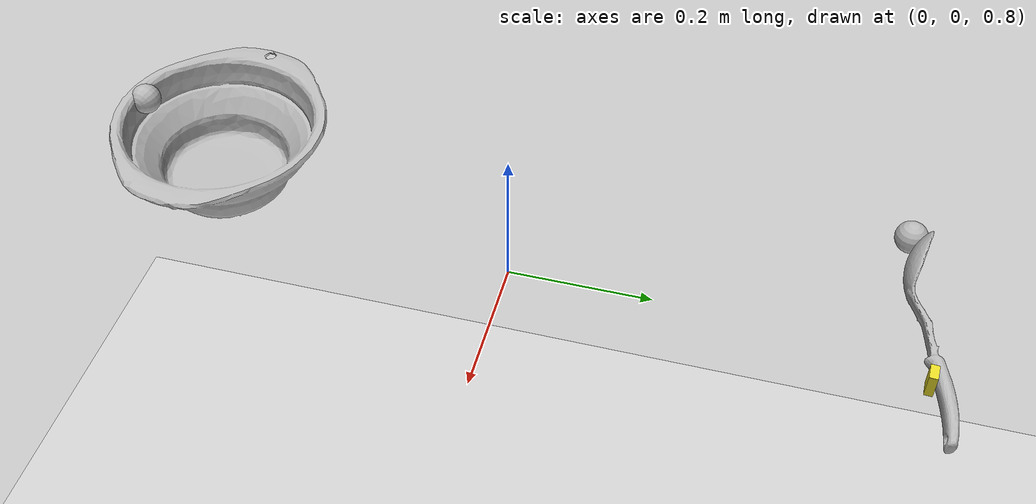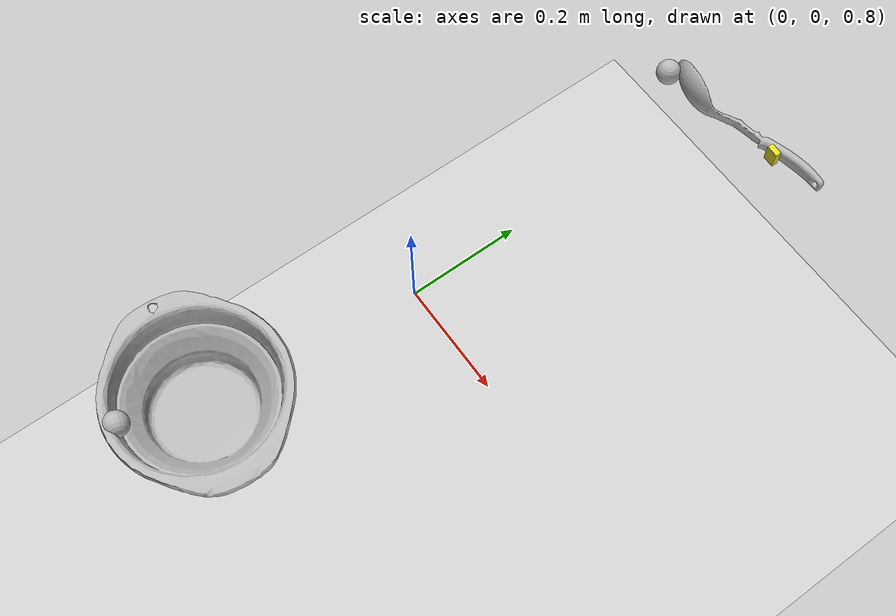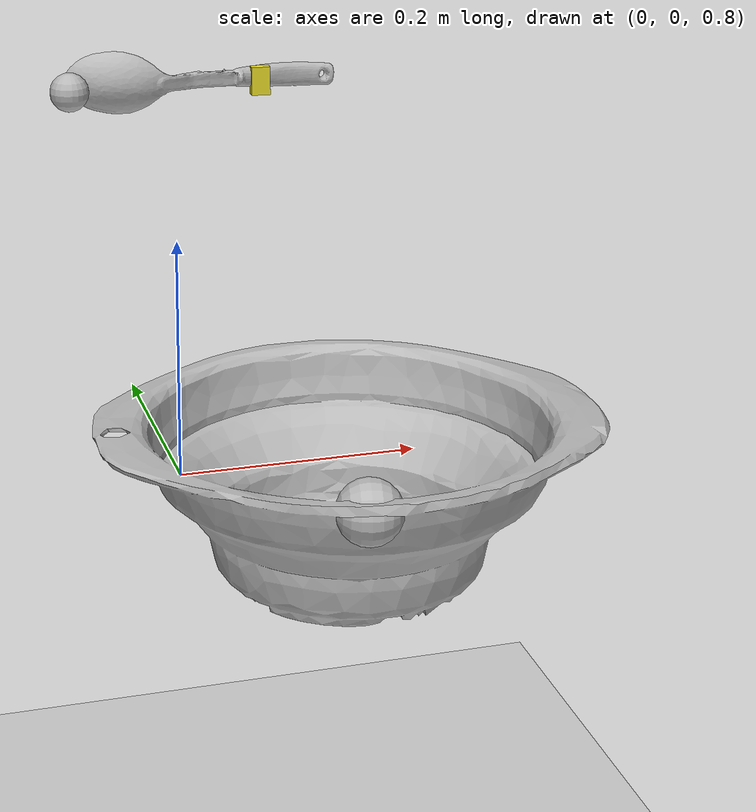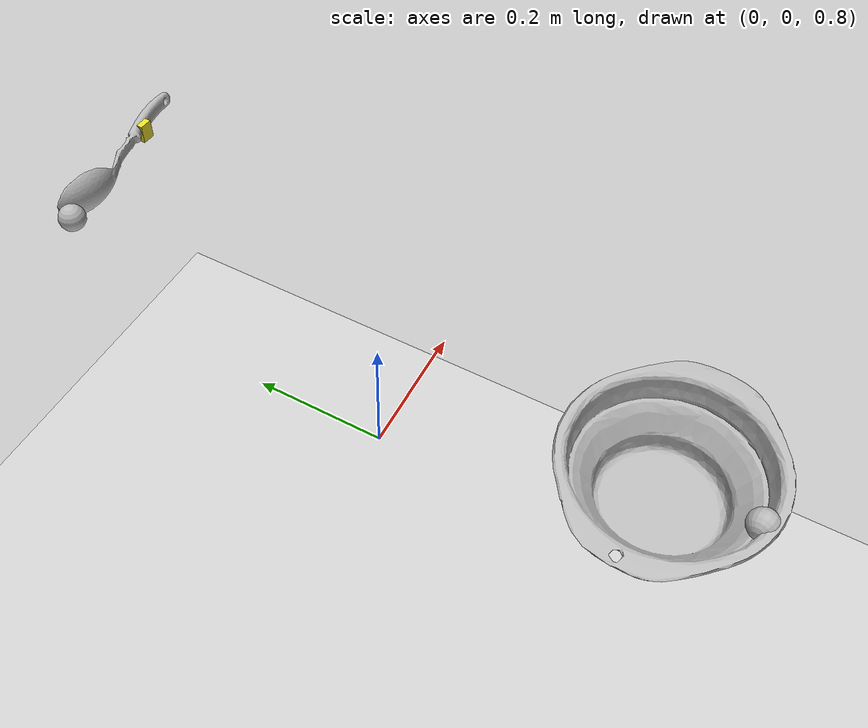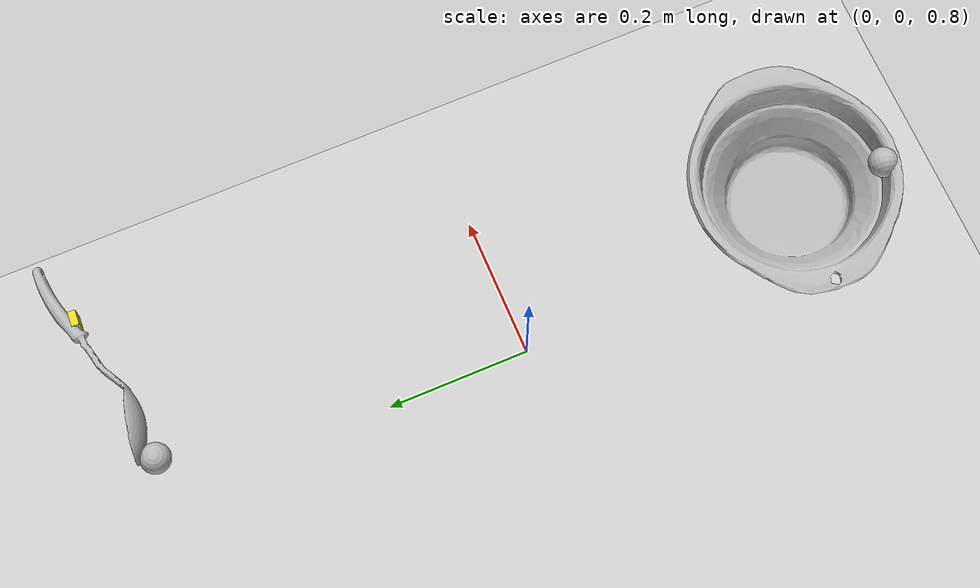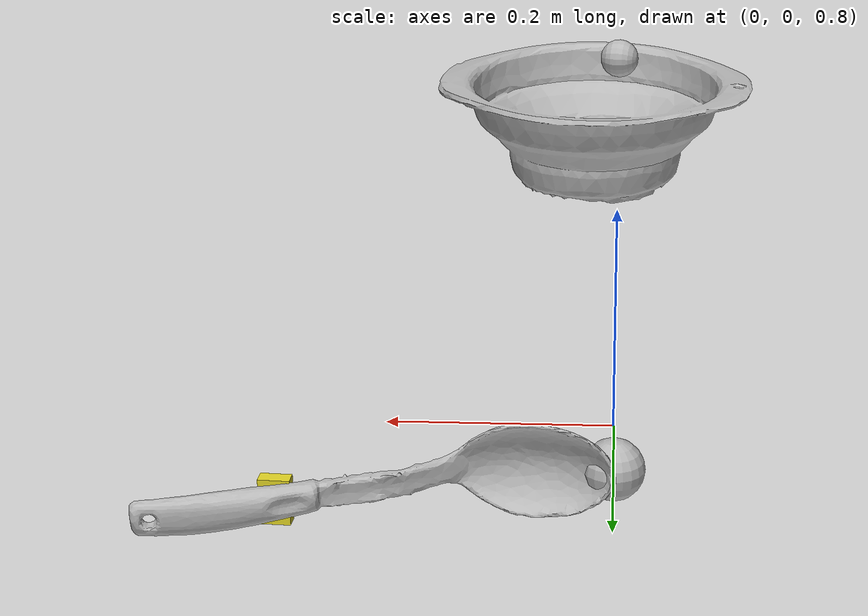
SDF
<?xml version='1.0'?>
<sdf version="1.4">
    <world name="big_bowl_serving_spoon_v">

        <include>
            <uri>model://sun</uri>
        </include>

        <include>
            <uri>model://ground_plane</uri>
        </include>

        <include>
            <uri>model://b_serving_spoon</uri>
            <pose>0.140489 0.527566 0.997957 1.571605 -0.058101 -2.939758</pose>
        </include>

        <include>
            <uri>model://butter_box</uri>
            <pose>0.208221 0.534198 0.991390 1.634659 1.569999 -0.001148</pose>
            <plugin name="stick" filename="libStickPlugin.so">
              <parentLinkName>link</parentLinkName>
              <childLinkName>b_serving_spoon::link</childLinkName>
              <force>5</force>
            </plugin>
        </include>

        <include>
            <uri>model://b_big_bowl</uri>
            <pose>0.024164 -0.383989 0.959287 -0.017186 -0.000884 -0.101566</pose>
        </include>

        <!-- Left Gripper -->
        <include>
            <uri>model://gripper</uri>
            <name>left_ee</name>
            <pose>0 0.5 1 0 0 0</pose>

            <plugin name="l_force_controller" filename="libvelocity_controller_plugin.so">
              <linkName>link</linkName>
              <topicName>set_l_ee_twist</topicName>
              <gains>
                <linear>
                  <P>100.0</P>
                  <I>0.0</I>
                  <D>25.0</D>
                </linear>
                <angular>
                  <P>100.0</P>
                  <I>0.0</I>
                  <D>25.0</D>
                </angular>
              </gains>
            </plugin>

            <plugin name="l_grip" filename="libGripPlugin.so">
              <parentLinkName>link</parentLinkName>
              <childLinkName>b_serving_spoon::link</childLinkName>
              <relativePose>0.112571612 0.00813051871955 -0.0153673645109 1.3828344221275815 0.015398730956486372 0.08077832485708741</relativePose>
            </plugin>

            <plugin name="l_tf_broadcaster" filename="libtf_broadcaster_plugin.so">
              <linkName>link</linkName>
              <frameName>l_gripper_tool_frame</frameName>
            </plugin>
        </include>

        <!-- Right Gripper -->
        <include>
            <uri>model://gripper</uri>
            <name>right_ee</name>
            <pose>0 -0.5 1 1.547368 1.402341 1.343703</pose>

            <plugin name="r_force_controller" filename="libvelocity_controller_plugin.so">
              <linkName>link</linkName>
              <topicName>set_r_gripper_twist</topicName>
              <gains>
                <linear>
                  <P>100.0</P>
                  <I>0.0</I>
                  <D>25.0</D>
                </linear>
                <angular>
                  <P>100.0</P>
                  <I>0.0</I>
                  <D>25.0</D>
                </angular>
              </gains>
            </plugin>

            <plugin name="r_grip" filename="libGripPlugin.so">
              <parentLinkName>link</parentLinkName>
              <childLinkName>b_big_bowl::link</childLinkName>
              <relativePose>0.06 0.11 0 -1.57 -1.35 1.3</relativePose>
            </plugin>

            <plugin name="r_tf_broadcaster" filename="libtf_broadcaster_plugin.so">
              <linkName>link</linkName>
              <frameName>r_gripper_tool_frame</frameName>
            </plugin>
        </include>

        <plugin name="feature_visualization_plugin" filename="libgiskard_visualization_plugin.so"></plugin>

        <gui>
            <camera name='user_camera'>
                <pose>1.700789 1.175709 1.670612 0 0.375643 -2.675000</pose>
                <view_controller>orbit</view_controller>
            </camera>
        </gui>

    </world>
</sdf>

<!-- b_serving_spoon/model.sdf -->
<sdf version='1.6'>
	<model name='b_serving_spoon'>
		<static>false</static>
		<pose>0 0 0 0 0 0</pose>

		<link name='link'>
			<inertial>
			<mass>0.15</mass>
			<pose>0.0019638 -6.1791e-05 0.00018857 0 0 0</pose>
				<inertia>
					<ixx>0.0000075</ixx>
					<iyy>0.00112875</iyy>
					<izz>0.00112875</izz>
				</inertia>
			</inertial>
			<sensor name="tool_contact_sensor" type="contact">
				<always_on>true</always_on>
				<update_rate>30.0</update_rate>
				<contact>
					<collision>collision</collision>
				</contact>
				<plugin name="tool_bumper" filename="libgazebo_ros_bumper.so">
					<bumperTopicName>tool_contact_sensor_state</bumperTopicName>
					<frameName>world</frameName>
				</plugin>
			</sensor>
			<collision name='collision'>
				<geometry>
					<mesh>
						<uri>model://b_serving_spoon/b_serving_spoon.dae</uri>
					</mesh>
				</geometry>
				<surface>
					<friction>
						<ode>
							<mu>0.2</mu>
							<mu2>0.2</mu2>
						</ode>
					</friction>
				</surface>
			</collision>
			<visual name='visual'>
				<geometry>
					<mesh>
						<uri>model://b_serving_spoon/b_serving_spoon.dae</uri>
					</mesh>
				</geometry>
			</visual>
		</link>
	</model>
</sdf>

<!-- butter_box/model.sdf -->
<sdf version='1.6'>
    <model name='butter_box'>
        <static>false</static>
        <pose>0 0 0 0 0 0</pose>
        <link name='link'>
            <pose>0 0 0 0 0 0</pose>
            <inertial>
                <mass>0.001</mass>
                <pose>0 0 0 0 0 0</pose>
                <inertia>
                    <ixx>0.00000004167</ixx>
                    <iyy>0.00000008333</iyy>
                    <izz>0.00000010833</izz>
                    <ixy>0</ixy>
                    <ixz>0</ixz>
                    <iyz>0</iyz>
                </inertia>
            </inertial>
            <collision name='collision'>
                <geometry>
                    <box>
                        <size>0.03 0.02 0.01</size>
                    </box>
                </geometry>
                <surface>
                    <friction>
                        <ode>
                            <mu>0.2</mu>
                            <mu2>0.2</mu2>
                        </ode>
                    </friction>
                </surface>
            </collision>
            <visual name='visual'>
                <geometry>
                    <box>
                        <size>0.03 0.02 0.01</size>
                    </box>
                </geometry>
                <material>
                    <script>
                        <name>Gazebo/Yellow</name>
                        <uri>file://media/materials/scripts/gazebo.material</uri>
                    </script>
                </material>
            </visual>
        </link>
    </model>
</sdf>

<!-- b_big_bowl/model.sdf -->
<sdf version='1.6'>
	<model name='b_big_bowl'>
		<static>false</static>
		<pose>0 0 0 0 0 0</pose>

		<link name='link'>
			<inertial>
			<mass>0.35</mass>
			<pose>-0.0022966 -0.0039142 0.0041527 0 0 0</pose>
				<inertia>
					<ixx>0.0009479167</ixx>
					<iyy>0.0009479167</iyy>
					<izz>0.00175</izz>
				</inertia>
			</inertial>
			<collision name='collision'>
				<geometry>
					<mesh>
						<uri>model://b_big_bowl/b_big_bowl.dae</uri>
					</mesh>
				</geometry>
				<surface>
					<friction>
						<ode>
							<mu>0.2</mu>
							<mu2>0.2</mu2>
						</ode>
					</friction>
				</surface>
			</collision>
			<visual name='visual'>
				<geometry>
					<mesh>
						<uri>model://b_big_bowl/b_big_bowl.dae</uri>
					</mesh>
				</geometry>
			</visual>
		</link>
	</model>
</sdf>

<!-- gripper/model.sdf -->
<sdf version='1.6'>
    <model name='gripper'>
        <static>false</static>
        <allow_auto_disable>false</allow_auto_disable>

        <pose>0 0 0 0 0 0</pose>

        <link name='link'>
            <pose>0 0 0 0 0 0</pose>

            <gravity>false</gravity>

            <visual name='visual'>
                <geometry>
                    <sphere>
                        <radius>0.02</radius>
                    </sphere>
                </geometry>
            </visual>

        </link>
    </model>
</sdf>
